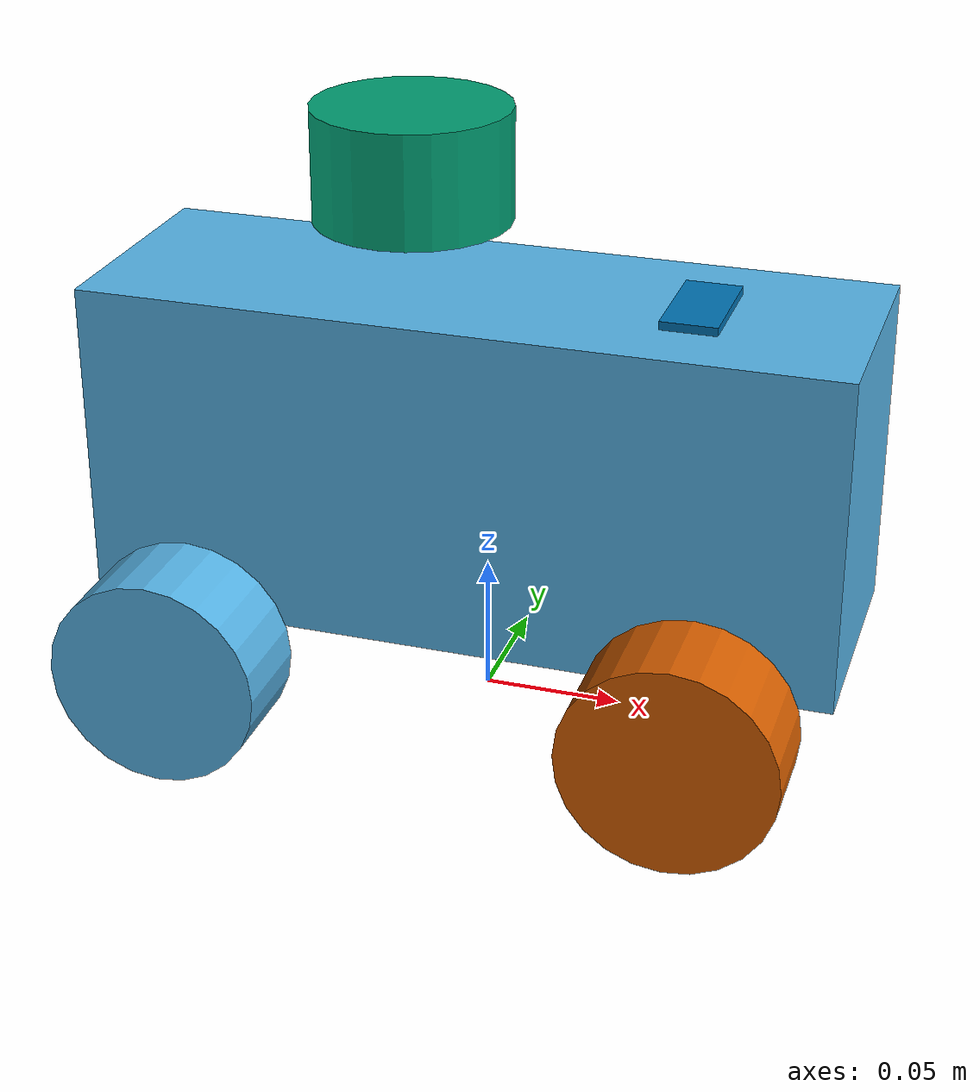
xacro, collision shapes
<?xml version="1.0"?>

<robot xmlns:xacro="http://www.ros.org/wiki/xacro" name="physicar">

  <!-- Include macro definitions -->
  <xacro:include filename="$(find physicar_description)/urdf/common_properties.xacro"/>
  <xacro:include filename="$(find physicar_description)/urdf/physicar_macros.xacro"/>

  <!-- Vehicle parameters -->
  <xacro:property name="wheelbase" value="0.18"/>
  <xacro:property name="track_width" value="0.16"/>            <!-- TF: actual wheel center distance (measured) -->
  <xacro:property name="visual_track_width" value="0.20"/>    <!-- Visual: mesh original position -->
  <xacro:property name="wheel_radius" value="0.0375"/>
  <xacro:property name="wheel_width" value="0.035"/>

  <!-- ========== BASE LINK ========== -->
  <link name="base_footprint"/>

  <joint name="base_joint" type="fixed">
    <parent link="base_footprint"/>
    <child link="base_link"/>
    <origin xyz="0 0 ${wheel_radius}" rpy="0 0 0"/>
  </joint>

  <link name="base_link">
    <inertial>
      <origin xyz="0 0 0" rpy="0 0 0"/>
      <mass value="1.3"/>
      <inertia ixx="0.00234" ixy="0" ixz="0" iyy="0.01092" iyz="0" izz="0.01092"/>
    </inertial>

    <visual name="base_visual">
      <origin xyz="0.1371 0 -0.0115" rpy="-0.018 0 1.5707"/>
      <geometry>
        <mesh filename="file://$(find physicar_description)/meshes/BaseReduced.dae"/>
      </geometry>
    </visual>

    <visual name="top_visual">
      <origin xyz="0.0 0.0 0.065" rpy="0.0 0.0 0.0"/>
      <geometry>
        <mesh filename="file://$(find physicar_description)/meshes/TopReduced.dae"/>
      </geometry>
    </visual>

    <collision name="base_collision">
      <origin xyz="0 0 0.06" rpy="0 0 0"/>
      <geometry>
        <box size="0.27 0.09 0.12"/>
      </geometry>
    </collision>
  </link>

  <!-- ========== LIDAR ========== -->
  <link name="lidar_link">
    <inertial>
      <origin xyz="0 0 0" rpy="0 0 0"/>
      <mass value="0.1"/>
      <inertia ixx="0.0001" ixy="0" ixz="0" iyy="0.0001" iyz="0" izz="0.0001"/>
    </inertial>

    <visual name="lidar_visual">
      <origin xyz="0.0 0.0 -0.03" rpy="0 0 0"/>
      <geometry>
        <mesh filename="file://$(find physicar_description)/meshes/STL27L.dae"/>
      </geometry>
    </visual>

    <collision name="lidar_collision">
      <origin xyz="0 0 0" rpy="0 0 0"/>
      <geometry>
        <cylinder radius="0.035" length="0.04"/>
      </geometry>
    </collision>
  </link>

  <joint name="lidar_joint" type="fixed">
    <parent link="base_link"/>
    <child link="lidar_link"/>
    <origin xyz="-0.027 0.0 0.1625" rpy="0 0 0"/>
  </joint>

  <!-- ========== PAN-TILT CAMERA SYSTEM ========== -->
  <!-- Pan Link (Z-axis rotation) -->
  <link name="camera_pan_link">
    <inertial>
      <origin xyz="0 0 0" rpy="0 0 0"/>
      <mass value="0.05"/>
      <inertia ixx="0.00001" ixy="0" ixz="0" iyy="0.00001" iyz="0" izz="0.00001"/>
    </inertial>

    <visual name="pan_visual">
      <origin xyz="0 0 0" rpy="0 0 0"/>
      <geometry>
        <mesh filename="file://$(find physicar_description)/meshes/ServoPan.dae"/>
      </geometry>
    </visual>

    <collision name="pan_collision">
      <origin xyz="0 0 0" rpy="0 0 0"/>
      <geometry>
        <box size="0.03 0.03 0.02"/>
      </geometry>
    </collision>
  </link>

  <joint name="camera_pan_joint" type="revolute">
    <parent link="base_link"/>
    <child link="camera_pan_link"/>
    <origin xyz="0.05 0.0 0.1" rpy="0 0 0"/>
    <axis xyz="0 0 1"/>
    <limit lower="-0.5236" upper="0.5236" effort="10" velocity="1.0"/>
    <dynamics damping="0.1" friction="0.1"/>
  </joint>

  <!-- Tilt Link (Y-axis rotation) -->
  <link name="camera_tilt_link">
    <inertial>
      <origin xyz="0 0 0" rpy="0 0 0"/>
      <mass value="0.03"/>
      <inertia ixx="0.000005" ixy="0" ixz="0" iyy="0.000005" iyz="0" izz="0.000005"/>
    </inertial>

    <visual name="tilt_visual">
      <origin xyz="0 0 0" rpy="0 0 0"/>
      <geometry>
        <mesh filename="file://$(find physicar_description)/meshes/ServoTilt.dae"/>
      </geometry>
    </visual>

    <collision name="tilt_collision">
      <origin xyz="0 0 0" rpy="0 0 0"/>
      <geometry>
        <box size="0.02 0.04 0.02"/>
      </geometry>
    </collision>
  </link>

  <joint name="camera_tilt_joint" type="revolute">
    <parent link="camera_pan_link"/>
    <child link="camera_tilt_link"/>
    <origin xyz="0.025 0.0 0.013" rpy="0 0 0"/>
    <axis xyz="0 1 0"/>
    <limit lower="-0.5236" upper="0.5236" effort="10" velocity="1.0"/>
    <dynamics damping="0.1" friction="0.1"/>
  </joint>

  <!-- Camera Link -->
  <link name="camera_link">
    <inertial>
      <origin xyz="0 0 0" rpy="0 0 0"/>
      <mass value="0.01"/>
      <inertia ixx="0.000001" ixy="0" ixz="0" iyy="0.000001" iyz="0" izz="0.000001"/>
    </inertial>
  </link>

  <joint name="camera_joint" type="fixed">
    <parent link="camera_tilt_link"/>
    <child link="camera_link"/>
    <origin xyz="0.030 0.0 0.014" rpy="0 0 0"/>
  </joint>

  <!-- Camera optical frame (Z forward, X right, Y down) -->
  <link name="camera_optical_frame"/>

  <joint name="camera_optical_joint" type="fixed">
    <parent link="camera_link"/>
    <child link="camera_optical_frame"/>
    <origin xyz="0 0 0" rpy="${-pi/2} 0 ${-pi/2}"/>
  </joint>

  <!-- ========== IMU ========== -->
  <link name="imu_link"/>

  <joint name="imu_joint" type="fixed">
    <parent link="base_link"/>
    <child link="imu_link"/>
    <origin xyz="0 0 0.0275" rpy="0 0 0"/>  <!-- 6.5cm from floor (base_link is at wheel_radius=3.75cm) -->
  </joint>

  <!-- ========== REAR WHEELS (Passive) ========== -->
  <xacro:rear_wheel prefix="rear_left" y_offset="${track_width/2}"
                    wheel_radius="${wheel_radius}" wheel_width="${wheel_width}"
                    rpy_yaw="${pi}"
                    x_offset="${-wheelbase/2}"
                    visual_y_offset="${(visual_track_width - track_width)/2}"/>
  <xacro:rear_wheel prefix="rear_right" y_offset="${-track_width/2}"
                    wheel_radius="${wheel_radius}" wheel_width="${wheel_width}"
                    rpy_yaw="0"
                    x_offset="${-wheelbase/2}"
                    visual_y_offset="${-(visual_track_width - track_width)/2}"/>

  <!-- ========== FRONT WHEELS (Steering + Drive) ========== -->
  <xacro:front_wheel prefix="front_left" y_offset="${track_width/2}"
                     wheel_radius="${wheel_radius}" wheel_width="${wheel_width}"
                     x_offset="${wheelbase/2}"
                     rpy_yaw="${pi}"
                     visual_y_offset="${(visual_track_width - track_width)/2}"/>
  <xacro:front_wheel prefix="front_right" y_offset="${-track_width/2}"
                     wheel_radius="${wheel_radius}" wheel_width="${wheel_width}"
                     x_offset="${wheelbase/2}"
                     rpy_yaw="0"
                     visual_y_offset="${-(visual_track_width - track_width)/2}"/>

</robot>

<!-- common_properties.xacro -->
<!--
  Copyright 2025 PhysiCar AI

  Common material and property definitions for PhysiCar URDF
-->

<robot xmlns:xacro="http://ros.org/wiki/xacro">
  <!-- Materials -->
  <material name="black">
    <color rgba="0.0 0.0 0.0 1.0"/>
  </material>

  <material name="dark_grey">
    <color rgba="0.3 0.3 0.3 1.0"/>
  </material>

  <material name="light_grey">
    <color rgba="0.6 0.6 0.6 1.0"/>
  </material>

  <material name="blue">
    <color rgba="0.1 0.1 0.8 1.0"/>
  </material>

  <material name="green">
    <color rgba="0.0 0.8 0.0 1.0"/>
  </material>

  <material name="red">
    <color rgba="0.8 0.0 0.0 1.0"/>
  </material>

  <material name="white">
    <color rgba="1.0 1.0 1.0 1.0"/>
  </material>

  <material name="orange">
    <color rgba="1.0 0.42 0.04 1.0"/>
  </material>

</robot>

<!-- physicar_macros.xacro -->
<!--
  PhysiCar Robot Macros
  Copyright 2025 PhysiCar AI

  Wheel macros for Ackermann steering vehicle
-->

<robot xmlns:xacro="http://www.ros.org/wiki/xacro">

  <!-- ========== REAR WHEEL MACRO (Passive) ========== -->
  <xacro:macro name="rear_wheel" params="prefix y_offset wheel_radius wheel_width rpy_yaw x_offset visual_y_offset">
    <link name="${prefix}_wheel_link">
      <inertial>
        <origin xyz="0 0 0" rpy="0 0 0"/>
        <mass value="0.05"/>
        <inertia
          ixx="${0.05 * (3*wheel_radius*wheel_radius + wheel_width*wheel_width) / 12}"
          ixy="0" ixz="0"
          iyy="${0.05 * wheel_radius * wheel_radius / 2}"
          iyz="0"
          izz="${0.05 * (3*wheel_radius*wheel_radius + wheel_width*wheel_width) / 12}"/>
      </inertial>

      <visual>
        <origin xyz="0 ${visual_y_offset} 0" rpy="0 0 ${rpy_yaw}"/>
        <geometry>
          <mesh filename="file://$(find physicar_description)/meshes/Wheel.dae"/>
        </geometry>
      </visual>

      <collision>
        <origin xyz="0 0 0" rpy="${pi/2} 0 0"/>
        <geometry>
          <cylinder radius="${wheel_radius}" length="${wheel_width}"/>
        </geometry>
      </collision>
    </link>

    <joint name="${prefix}_wheel_joint" type="continuous">
      <parent link="base_link"/>
      <child link="${prefix}_wheel_link"/>
      <origin xyz="${x_offset} ${y_offset} 0" rpy="0 0 0"/>
      <axis xyz="0 1 0"/>
      <dynamics damping="0.01" friction="0.1"/>
    </joint>
  </xacro:macro>

  <!-- ========== FRONT WHEEL MACRO (Steering + Drive) ========== -->
  <xacro:macro name="front_wheel" params="prefix y_offset wheel_radius wheel_width x_offset rpy_yaw visual_y_offset">
    <!-- Steering hinge link -->
    <link name="${prefix}_steering_link">
      <inertial>
        <origin xyz="0 0 0" rpy="0 0 0"/>
        <mass value="0.01"/>
        <inertia ixx="0.000001" ixy="0" ixz="0" iyy="0.000001" iyz="0" izz="0.000001"/>
      </inertial>
    </link>

    <joint name="${prefix}_steering_joint" type="revolute">
      <parent link="base_link"/>
      <child link="${prefix}_steering_link"/>
      <origin xyz="${x_offset} ${y_offset} 0" rpy="0 0 0"/>
      <axis xyz="0 0 1"/>
      <limit lower="-0.3491" upper="0.3491" effort="25" velocity="1.0"/>
      <dynamics damping="0.1" friction="0.1"/>
    </joint>

    <!-- Wheel link -->
    <link name="${prefix}_wheel_link">
      <inertial>
        <origin xyz="0 0 0" rpy="0 0 0"/>
        <mass value="0.05"/>
        <inertia
          ixx="${0.05 * (3*wheel_radius*wheel_radius + wheel_width*wheel_width) / 12}"
          ixy="0" ixz="0"
          iyy="${0.05 * wheel_radius * wheel_radius / 2}"
          iyz="0"
          izz="${0.05 * (3*wheel_radius*wheel_radius + wheel_width*wheel_width) / 12}"/>
      </inertial>

      <visual>
        <origin xyz="0 ${visual_y_offset} 0" rpy="0 0 ${rpy_yaw}"/>
        <geometry>
          <mesh filename="file://$(find physicar_description)/meshes/Wheel.dae"/>
        </geometry>
      </visual>

      <collision>
        <origin xyz="0 0 0" rpy="${pi/2} 0 0"/>
        <geometry>
          <cylinder radius="${wheel_radius}" length="${wheel_width}"/>
        </geometry>
      </collision>
    </link>

    <joint name="${prefix}_wheel_joint" type="continuous">
      <parent link="${prefix}_steering_link"/>
      <child link="${prefix}_wheel_link"/>
      <origin xyz="0 0 0" rpy="0 0 0"/>
      <axis xyz="0 1 0"/>
      <dynamics damping="0.01" friction="0.1"/>
    </joint>
  </xacro:macro>

</robot>
